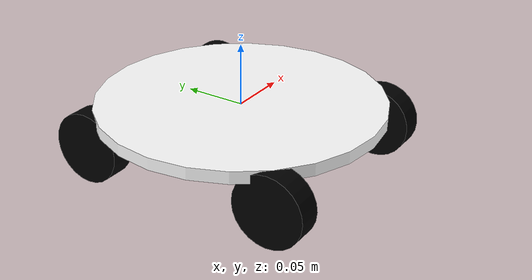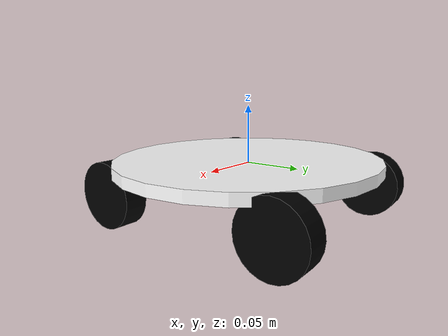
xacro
<?xml version="1.0"?>

<robot xmlns:xacro="http://www.ros.org/wiki/xacro"
    xmlns:sensor="http://playerstage.sourceforge.net/gazebo/xmlschema/#sensor"
    xmlns:controller="http://playerstage.sourceforge.net/gazebo/xmlschema/#controller"
    xmlns:interface="http://playerstage.sourceforge.net/gazebo/xmlschema/#interface"
    name="robot1_xacro">

  <property name="M_PI" value="3.1415926535897931"/>
  <property name="base_radius" value="0.117" />
  <property name="cube_2" value="1.414213562" />

  <xacro:macro name="default_inertial" params="mass">
    <inertial>
    <mass value="${mass}" />
    <inertia ixx="1.0" ixy="0.0" ixz="0.0"
        iyy="1.0" iyz="0.0"
        izz="1.0" />
    </inertial>
  </xacro:macro>

  <xacro:macro name="default_wheel">
    <visual>
      <geometry>
        <cylinder length=".02" radius="0.029"/>
      </geometry>
      <origin rpy="0 0 1.57075" xyz="0 0 0"/>
      <material name="black">
        <color rgba="0 0 0 1"/>
      </material>
    </visual>
    <collision>
      <geometry>
        <cylinder length=".02" radius="0.029"/>
      </geometry>
    </collision>
  </xacro:macro>

  <xacro:macro name="default_base_link">
    <visual>
      <geometry>
        <cylinder length=".01" radius="${base_radius}"/>
      </geometry>
      <origin rpy="0 0 1.57075" xyz="0 0 0"/>
      <material name="white">
        <color rgba="1 1 1 1"/>
      </material>
    </visual>
    <collision>
      <geometry>
        <cylinder length=".01" radius="${base_radius}"/>
      </geometry>
    </collision>
  </xacro:macro>

  <link name="base_link">
    <xacro:default_base_link />
    <xacro:default_inertial mass="10"/>
  </link>

  <link name="right_front_wheel">
    <xacro:default_wheel />
    <xacro:default_inertial mass="0.01"/>
  </link>

  <link name="right_back_wheel">
    <xacro:default_wheel />
    <xacro:default_inertial mass="0.01"/>
  </link>

  <link name="left_front_wheel">
    <xacro:default_wheel />
    <xacro:default_inertial mass="0.01"/>
  </link>

  <link name="left_back_wheel">
    <xacro:default_wheel />
    <xacro:default_inertial mass="0.01"/>
  </link>

  <joint name="right_front_wheel_joint" type="continuous">
    <parent link="base_link"/>
    <child link="right_front_wheel"/>
    <origin rpy="0 ${M_PI/2} 0" xyz="${base_radius/cube_2} ${base_radius/cube_2} -0.024"/>
    <axis xyz="0 0 1" />
    <limit effort="100" velocity="100"/>
    <joint_properties damping="0.0" friction="0.0"/>
  </joint>

  <joint name="right_back_wheel_joint" type="continuous">
    <axis xyz="0 0 1" />
    <parent link="base_link"/>
    <child link="right_back_wheel"/>
    <origin rpy="0 ${M_PI/2} 0" xyz="${base_radius/cube_2} ${-base_radius/cube_2} -0.024"/>
    <limit effort="100" velocity="100"/>
    <joint_properties damping="0.0" friction="0.0"/>
  </joint>

  <joint name="left_front_wheel_joint" type="continuous">
    <parent link="base_link"/>
    <axis xyz="0 0 1" />
    <child link="left_front_wheel"/>
    <origin rpy="0 ${M_PI/2} 0" xyz="${-base_radius/cube_2} ${base_radius/cube_2} -0.024"/>
    <limit effort="100" velocity="100"/>
    <joint_properties damping="0.0" friction="0.0"/>
  </joint>

  <joint name="left_back_wheel_joint" type="continuous">
    <parent link="base_link"/>
    <axis xyz="0 0 1" />
    <child link="left_back_wheel"/>
    <origin rpy="0 ${M_PI/2} 0" xyz="${-base_radius/cube_2} ${-base_radius/cube_2} -0.024"/>
    <limit effort="100" velocity="100"/>
    <joint_properties damping="0.0" friction="0.0"/>
  </joint>

  <!-- Drive controller -->
  <gazebo>
    <plugin name="skid_steer_drive_controller" filename="libgazebo_ros_skid_steer_drive.so">
      <updateRate>100.0</updateRate>
      <robotNamespace></robotNamespace>
      <leftFrontJoint>left_front_wheel_joint</leftFrontJoint>
      <rightFrontJoint>right_front_wheel_joint</rightFrontJoint>
      <leftRearJoint>left_back_wheel_joint</leftRearJoint>
      <rightRearJoint>right_back_wheel_joint</rightRearJoint>
      <wheelSeparation>4</wheelSeparation>
      <wheelDiameter>0.1</wheelDiameter>
      <commandTopic>cmd_vel</commandTopic>
      <odometryTopic>odom</odometryTopic>
      <robotBaseFrame>base_link</robotBaseFrame>
      <odometryFrame>odom</odometryFrame>
      <torque>1</torque>
      <topicName>cmd_vel</topicName>
      <broadcastTF>1</broadcastTF>
    </plugin>
  </gazebo>

  <!-- ros_control plugin -->
  <gazebo>
    <plugin name="gazebo_ros_control" filename="libgazebo_ros_control.so">
      <robotNamespace>/robot</robotNamespace>
    </plugin>
  </gazebo>

</robot>
